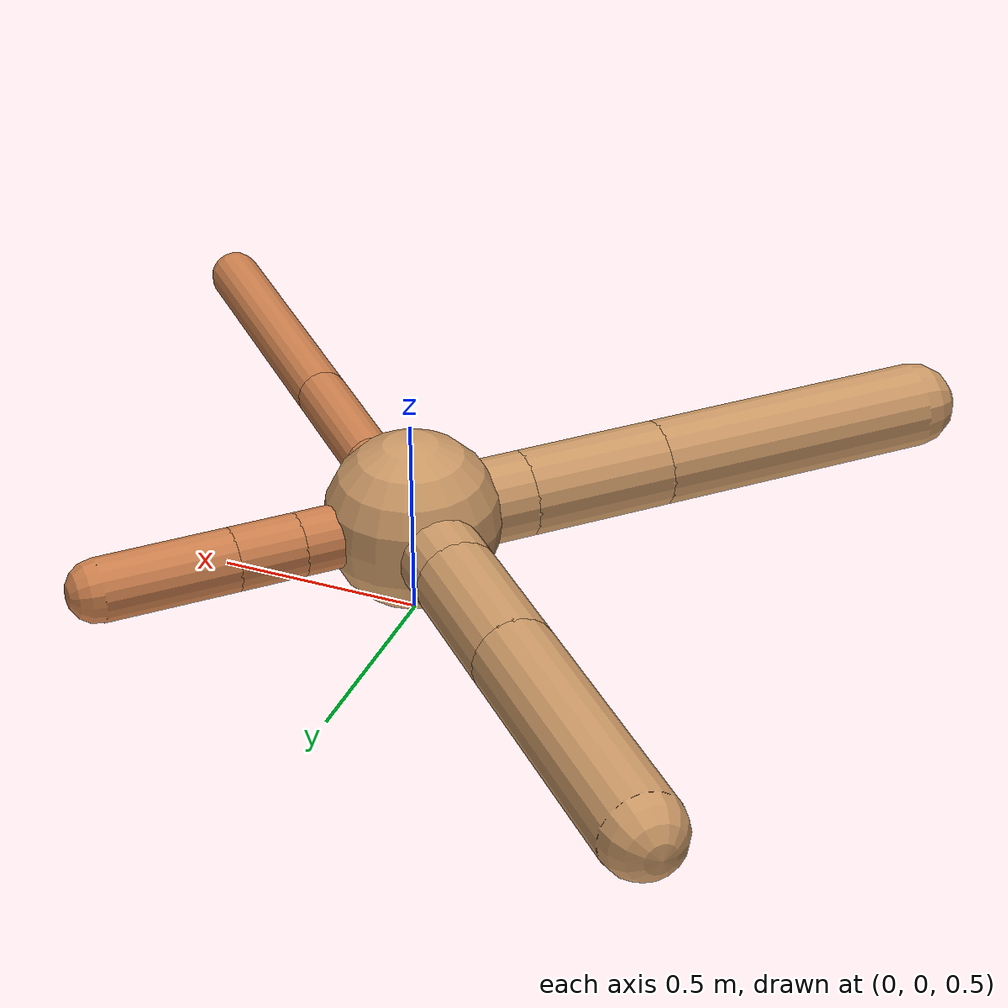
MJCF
<?xml version="1.0" ?>
<mujoco model="ant">

	<compiler angle="degree" coordinate="local" inertiafromgeom="true"/>

	<option integrator="RK4" timestep="0.01"/>

	<custom>

		<numeric data="0.0 0.0 0.55 1.0 0.0 0.0 0.0 0.0 1.0 0.0 -1.0 0.0 -1.0 0.0 1.0" name="init_qpos"/>

	</custom>

	<default>

		<joint armature="1" damping="1" limited="true"/>

		<geom conaffinity="0" condim="3" density="5.0" friction="1.5 0.1 0.1" margin="0.01" rgba="0.8 0.6 0.4 1"/>

	</default>

	<worldbody>

		<body name="torso" pos="0 0 0.75">

			<geom name="torso_geom" pos="0 0 0" size="0.21256338586593215" type="sphere"/>

			<!--joint armature="0" damping="0" limited="false" margin="0.01" name="root" pos="0 0 0" type="free"/-->

			<body name="front_left_leg" pos="0 0 0">

				<geom fromto="0 0 0 0.2 0.2 0" name="aux_1_geom" size="0.07635455590589886" type="capsule" rgba=".8 .5 .3 1"/>

				<body name="aux_1" pos="0.2 0.2 0">

					<joint axis="0 0 1" name="hip_1" pos="0.0 0.0 0.0" range="-40 40" type="hinge"/>

					<geom fromto="0 0 0 0.11338465628218597 0.11338465628218597 0" name="left_leg_geom" size="0.07635455590589886" type="capsule" rgba=".8 .5 .3 1"/>

					<body pos="0.11338465628218597 0.11338465628218597 0" name="front_left_foot">

						<joint axis="-1 1 0" name="ankle_1" pos="0.0 0.0 0.0" range="30 100" type="hinge"/>

						<geom fromto="0 0 0 0.22676931256437194 0.22676931256437194 0" name="left_ankle_geom" size="0.07635455590589886" type="capsule" rgba=".8 .5 .3 1"/>

					</body>

				</body>

			</body>

			<body name="front_right_leg" pos="0 0 0">

				<geom fromto="0 0 0 -0.2 0.2 0" name="aux_2_geom" size="0.10162332016840628" type="capsule"/>

				<body name="aux_2" pos="-0.2 0.2 0">

					<joint axis="0 0 1" name="hip_2" pos="0.0 0.0 0.0" range="-40 40" type="hinge"/>

					<geom fromto="0 0 0 -0.23334430247823265 0.23334430247823265 0" name="right_leg_geom" size="0.10162332016840628" type="capsule"/>

					<body pos="-0.23334430247823265 0.23334430247823265 0" name="front_right_foot">

						<joint axis="1 1 0" name="ankle_2" pos="0.0 0.0 0.0" range="-100 -30" type="hinge"/>

						<geom fromto="0 0 0 -0.4666886049564653 0.4666886049564653 0" name="right_ankle_geom" size="0.10162332016840628" type="capsule"/>

					</body>

				</body>

			</body>

			<body name="left_back_leg" pos="0 0 0">

				<geom fromto="0 0 0 -0.2 -0.2 0" name="aux_3_geom" size="0.10411984570579481" type="capsule"/>

				<body name="aux_3" pos="-0.2 -0.2 0">

					<joint axis="0 0 1" name="hip_3" pos="0.0 0.0 0.0" range="-40 40" type="hinge"/>

					<geom fromto="0 0 0 -0.24800923853792148 -0.24800923853792148 0" name="back_leg_geom" size="0.10411984570579481" type="capsule"/>

					<body pos="-0.24800923853792148 -0.24800923853792148 0" name="left_back_foot">

						<joint axis="-1 1 0" name="ankle_3" pos="0.0 0.0 0.0" range="-100 -30" type="hinge"/>

						<geom fromto="0 0 0 -0.49601847707584296 -0.49601847707584296 0" name="third_ankle_geom" size="0.10411984570579481" type="capsule"/>

					</body>

				</body>

			</body>

			<body name="right_back_leg" pos="0 0 0">

				<geom fromto="0 0 0 0.2 -0.2 0" name="aux_4_geom" size="0.06346243606612943" type="capsule" rgba=".8 .5 .3 1"/>

				<body name="aux_4" pos="0.2 -0.2 0">

					<joint axis="0 0 1" name="hip_4" pos="0.0 0.0 0.0" range="-40 40" type="hinge"/>

					<geom fromto="0 0 0 0.24291112250577582 -0.24291112250577582 0" name="rightback_leg_geom" size="0.06346243606612943" type="capsule" rgba=".8 .5 .3 1"/>

					<body pos="0.24291112250577582 -0.24291112250577582 0" name="right_back_foot">

						<joint axis="1 1 0" name="ankle_4" pos="0.0 0.0 0.0" range="30 100" type="hinge"/>

						<geom fromto="0 0 0 0.48582224501155163 -0.48582224501155163 0" name="fourth_ankle_geom" size="0.06346243606612943" type="capsule" rgba=".8 .5 .3 1"/>

					</body>

				</body>

			</body>

		</body>

	</worldbody>

	<actuator>

		<motor ctrllimited="true" ctrlrange="-1.0 1.0" joint="hip_4" gear="150"/>

		<motor ctrllimited="true" ctrlrange="-1.0 1.0" joint="ankle_4" gear="150"/>

		<motor ctrllimited="true" ctrlrange="-1.0 1.0" joint="hip_1" gear="150"/>

		<motor ctrllimited="true" ctrlrange="-1.0 1.0" joint="ankle_1" gear="150"/>

		<motor ctrllimited="true" ctrlrange="-1.0 1.0" joint="hip_2" gear="150"/>

		<motor ctrllimited="true" ctrlrange="-1.0 1.0" joint="ankle_2" gear="150"/>

		<motor ctrllimited="true" ctrlrange="-1.0 1.0" joint="hip_3" gear="150"/>

		<motor ctrllimited="true" ctrlrange="-1.0 1.0" joint="ankle_3" gear="150"/>

	</actuator>

</mujoco>
